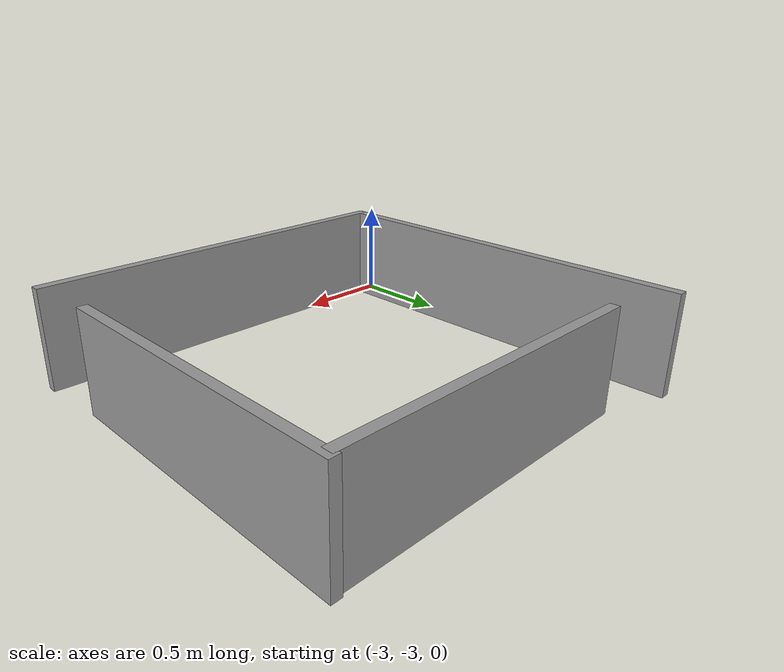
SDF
<?xml version='1.0'?>
<sdf version="1.5">
  <model name='tunnel_wall_3'>
    <pose frame=''>-0.964699 -1.03574 0 0 -0 0</pose>
    <static>true</static>
    <link name='Wall_12'>
      <pose frame=''>-1.94548 -0.985857 0 0 -0 1.5708</pose>
      <self_collide>0</self_collide>
      <kinematic>0</kinematic>
      <visual name='Wall_12_Visual'>
        <pose frame=''>0 0 0.25 0 -0 0</pose>
        <geometry>
          <box>
            <size>2 0.05 0.5</size>
          </box>
        </geometry>
        <material>
          <script>
            <uri>file://media/materials/scripts/gazebo.material</uri>
            <name>Gazebo/Grey</name>
          </script>
          <ambient>1 1 1 1</ambient>
          <diffuse>0.7 0.7 0.7 1</diffuse>
          <specular>0.01 0.01 0.01 1</specular>
          <emissive>0 0 0 1</emissive>
        </material>
        <cast_shadows>1</cast_shadows>
        <transparency>0</transparency>
      </visual>
      <collision name='Wall_12_Collision'>
        <laser_retro>0</laser_retro>
        <max_contacts>10</max_contacts>
        <pose frame=''>0 0 0.25 0 -0 0</pose>
        <geometry>
          <box>
            <size>2 0.05 0.5</size>
          </box>
        </geometry>
        <surface>
          <friction>
            <ode>
              <mu>1</mu>
              <mu2>1</mu2>
              <fdir1>0 0 0</fdir1>
              <slip1>0</slip1>
              <slip2>0</slip2>
            </ode>
            <torsional>
              <coefficient>1</coefficient>
              <patch_radius>0</patch_radius>
              <surface_radius>0</surface_radius>
              <use_patch_radius>1</use_patch_radius>
              <ode>
                <slip>0</slip>
              </ode>
            </torsional>
          </friction>
          <bounce>
            <restitution_coefficient>0</restitution_coefficient>
            <threshold>1e+06</threshold>
          </bounce>
          <contact>
            <collide_without_contact>0</collide_without_contact>
            <collide_without_contact_bitmask>1</collide_without_contact_bitmask>
            <collide_bitmask>1</collide_bitmask>
            <ode>
              <soft_cfm>0</soft_cfm>
              <soft_erp>0.2</soft_erp>
              <kp>1e+13</kp>
              <kd>1</kd>
              <max_vel>0.01</max_vel>
              <min_depth>0</min_depth>
            </ode>
            <bullet>
              <split_impulse>1</split_impulse>
              <split_impulse_penetration_threshold>-0.01</split_impulse_penetration_threshold>
              <soft_cfm>0</soft_cfm>
              <soft_erp>0.2</soft_erp>
              <kp>1e+13</kp>
              <kd>1</kd>
            </bullet>
          </contact>
        </surface>
      </collision>
      <gravity>1</gravity>
    </link>
    <link name='Wall_14'>
      <pose frame=''>-0.964699 -1.97118 0 0 -0 0</pose>
      <self_collide>0</self_collide>
      <kinematic>0</kinematic>
      <visual name='Wall_14_Visual'>
        <pose frame=''>0 0 0.25 0 -0 0</pose>
        <geometry>
          <box>
            <size>2.00003 0.05 0.5</size>
          </box>
        </geometry>
        <material>
          <script>
            <uri>file://media/materials/scripts/gazebo.material</uri>
            <name>Gazebo/Grey</name>
          </script>
          <ambient>1 1 1 1</ambient>
          <diffuse>0.7 0.7 0.7 1</diffuse>
          <specular>0.01 0.01 0.01 1</specular>
          <emissive>0 0 0 1</emissive>
        </material>
        <cast_shadows>1</cast_shadows>
        <transparency>0</transparency>
      </visual>
      <collision name='Wall_14_Collision'>
        <laser_retro>0</laser_retro>
        <max_contacts>10</max_contacts>
        <pose frame=''>0 0 0.25 0 -0 0</pose>
        <geometry>
          <box>
            <size>2.00003 0.05 0.5</size>
          </box>
        </geometry>
        <surface>
          <friction>
            <ode>
              <mu>1</mu>
              <mu2>1</mu2>
              <fdir1>0 0 0</fdir1>
              <slip1>0</slip1>
              <slip2>0</slip2>
            </ode>
            <torsional>
              <coefficient>1</coefficient>
              <patch_radius>0</patch_radius>
              <surface_radius>0</surface_radius>
              <use_patch_radius>1</use_patch_radius>
              <ode>
                <slip>0</slip>
              </ode>
            </torsional>
          </friction>
          <bounce>
            <restitution_coefficient>0</restitution_coefficient>
            <threshold>1e+06</threshold>
          </bounce>
          <contact>
            <collide_without_contact>0</collide_without_contact>
            <collide_without_contact_bitmask>1</collide_without_contact_bitmask>
            <collide_bitmask>1</collide_bitmask>
            <ode>
              <soft_cfm>0</soft_cfm>
              <soft_erp>0.2</soft_erp>
              <kp>1e+13</kp>
              <kd>1</kd>
              <max_vel>0.01</max_vel>
              <min_depth>0</min_depth>
            </ode>
            <bullet>
              <split_impulse>1</split_impulse>
              <split_impulse_penetration_threshold>-0.01</split_impulse_penetration_threshold>
              <soft_cfm>0</soft_cfm>
              <soft_erp>0.2</soft_erp>
              <kp>1e+13</kp>
              <kd>1</kd>
            </bullet>
          </contact>
        </surface>
      </collision>
      <gravity>1</gravity>
    </link>
    <link name='Wall_16'>
      <pose frame=''>-0.021303 -0.852071 0 0 -0 1.5708</pose>
      <inertial>
        <inertia>
          <ixx>nan</ixx>
          <ixy>0</ixy>
          <ixz>0</ixz>
          <iyy>nan</iyy>
          <iyz>0</iyz>
          <izz>nan</izz>
        </inertia>
        <mass>0</mass>
        <pose frame=''>0 0 0 0 -0 0</pose>
      </inertial>
      <self_collide>0</self_collide>
      <kinematic>0</kinematic>
      <visual name='Wall_16_Visual'>
        <pose frame=''>0 0 0.25 0 -0 0</pose>
        <geometry>
          <box>
            <size>1.53699 0.05 0.5</size>
          </box>
        </geometry>
        <material>
          <script>
            <uri>file://media/materials/scripts/gazebo.material</uri>
            <name>Gazebo/Grey</name>
          </script>
          <ambient>1 1 1 1</ambient>
          <diffuse>0.7 0.7 0.7 1</diffuse>
          <specular>0.01 0.01 0.01 1</specular>
          <emissive>0 0 0 1</emissive>
        </material>
        <cast_shadows>1</cast_shadows>
        <transparency>0</transparency>
      </visual>
      <collision name='Wall_16_Collision'>
        <laser_retro>0</laser_retro>
        <max_contacts>10</max_contacts>
        <pose frame=''>0 0 0.25 0 -0 0</pose>
        <geometry>
          <box>
            <size>1.53699 0.05 0.5</size>
          </box>
        </geometry>
        <surface>
          <friction>
            <ode>
              <mu>1</mu>
              <mu2>1</mu2>
              <fdir1>0 0 0</fdir1>
              <slip1>0</slip1>
              <slip2>0</slip2>
            </ode>
            <torsional>
              <coefficient>1</coefficient>
              <patch_radius>0</patch_radius>
              <surface_radius>0</surface_radius>
              <use_patch_radius>1</use_patch_radius>
              <ode>
                <slip>0</slip>
              </ode>
            </torsional>
          </friction>
          <bounce>
            <restitution_coefficient>0</restitution_coefficient>
            <threshold>1e+06</threshold>
          </bounce>
          <contact>
            <collide_without_contact>0</collide_without_contact>
            <collide_without_contact_bitmask>1</collide_without_contact_bitmask>
            <collide_bitmask>1</collide_bitmask>
            <ode>
              <soft_cfm>0</soft_cfm>
              <soft_erp>0.2</soft_erp>
              <kp>1e+13</kp>
              <kd>1</kd>
              <max_vel>0.01</max_vel>
              <min_depth>0</min_depth>
            </ode>
            <bullet>
              <split_impulse>1</split_impulse>
              <split_impulse_penetration_threshold>-0.01</split_impulse_penetration_threshold>
              <soft_cfm>0</soft_cfm>
              <soft_erp>0.2</soft_erp>
              <kp>1e+13</kp>
              <kd>1</kd>
            </bullet>
          </contact>
        </surface>
      </collision>
      <gravity>1</gravity>
    </link>
    <link name='Wall_17'>
      <pose frame=''>-0.814699 -0.12074 0 0 -0 3.14159</pose>
      <self_collide>0</self_collide>
      <kinematic>0</kinematic>
      <visual name='Wall_17_Visual'>
        <pose frame=''>0 0 0.25 0 -0 0</pose>
        <geometry>
          <box>
            <size>1.58 0.05 0.5</size>
          </box>
        </geometry>
        <material>
          <script>
            <uri>file://media/materials/scripts/gazebo.material</uri>
            <name>Gazebo/Grey</name>
          </script>
          <ambient>1 1 1 1</ambient>
          <diffuse>0.7 0.7 0.7 1</diffuse>
          <specular>0.01 0.01 0.01 1</specular>
          <emissive>0 0 0 1</emissive>
        </material>
        <cast_shadows>1</cast_shadows>
        <transparency>0</transparency>
      </visual>
      <collision name='Wall_17_Collision'>
        <laser_retro>0</laser_retro>
        <max_contacts>10</max_contacts>
        <pose frame=''>0 0 0.25 0 -0 0</pose>
        <geometry>
          <box>
            <size>1.58 0.05 0.5</size>
          </box>
        </geometry>
        <surface>
          <friction>
            <ode>
              <mu>1</mu>
              <mu2>1</mu2>
              <fdir1>0 0 0</fdir1>
              <slip1>0</slip1>
              <slip2>0</slip2>
            </ode>
            <torsional>
              <coefficient>1</coefficient>
              <patch_radius>0</patch_radius>
              <surface_radius>0</surface_radius>
              <use_patch_radius>1</use_patch_radius>
              <ode>
                <slip>0</slip>
              </ode>
            </torsional>
          </friction>
          <bounce>
            <restitution_coefficient>0</restitution_coefficient>
            <threshold>1e+06</threshold>
          </bounce>
          <contact>
            <collide_without_contact>0</collide_without_contact>
            <collide_without_contact_bitmask>1</collide_without_contact_bitmask>
            <collide_bitmask>1</collide_bitmask>
            <ode>
              <soft_cfm>0</soft_cfm>
              <soft_erp>0.2</soft_erp>
              <kp>1e+13</kp>
              <kd>1</kd>
              <max_vel>0.01</max_vel>
              <min_depth>0</min_depth>
            </ode>
            <bullet>
              <split_impulse>1</split_impulse>
              <split_impulse_penetration_threshold>-0.01</split_impulse_penetration_threshold>
              <soft_cfm>0</soft_cfm>
              <soft_erp>0.2</soft_erp>
              <kp>1e+13</kp>
              <kd>1</kd>
            </bullet>
          </contact>
        </surface>
      </collision>
      <gravity>1</gravity>
    </link>
    <static>1</static>
    <allow_auto_disable>1</allow_auto_disable>
  </model>
</sdf>
